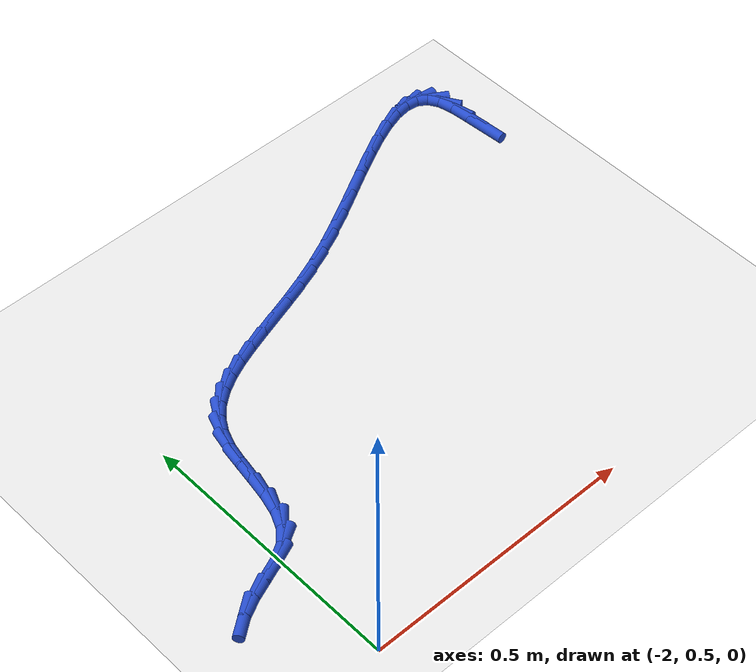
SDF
<sdf version="1.6">
 <world name="default">
  <model name="ground_plane">
   <static>1</static>
   <link name="link">
    <collision name="collision">
     <geometry><plane><normal>0 0 1</normal><size>100 100</size></plane></geometry>
     <surface><friction><ode><mu>100</mu><mu2>50</mu2></ode></friction></surface>
    </collision>
    <visual name="visual">
     <cast_shadows>0</cast_shadows>
     <geometry><plane><normal>0 0 1</normal><size>100 100</size></plane></geometry>
     <material>
      <script><uri>file://media/materials/scripts/gazebo.material</uri><name>Gazebo/WhiteGlow</name></script>
     </material>
    </visual>
   </link>
  </model>
  <model name="line">
   <link name="link_55">
    <pose>-1.1116758356326157 1.1791620359796127 0.01 0 1.57 -1.4992678715452665</pose>
    <collision name="collision">
     <geometry><cylinder><radius>0.01</radius><length>0.08</length></cylinder></geometry>
    </collision>
    <visual name="visual">
     <material>
      <script><name>Gazebo/Blue</name><uri>file://media/materials/scripts/gazebo.material</uri></script>
     </material>
     <geometry><cylinder><radius>0.01</radius><length>0.08</length></cylinder></geometry>
    </visual>
   </link>
   <link name="link_56">
    <pose>-1.114421414229995 1.2174809759097003 0.01 0 1.57 -1.4856100562711685</pose>
    <collision name="collision">
     <geometry><cylinder><radius>0.01</radius><length>0.08</length></cylinder></geometry>
    </collision>
    <visual name="visual">
     <material>
      <script><name>Gazebo/Blue</name><uri>file://media/materials/scripts/gazebo.material</uri></script>
     </material>
     <geometry><cylinder><radius>0.01</radius><length>0.08</length></cylinder></geometry>
    </visual>
   </link>
   <link name="link_57">
    <pose>-1.1175008044849892 1.2535423962802963 0.01 0 1.57 -1.3523575630717317</pose>
    <collision name="collision">
     <geometry><cylinder><radius>0.01</radius><length>0.08</length></cylinder></geometry>
    </collision>
    <visual name="visual">
     <material>
      <script><name>Gazebo/Blue</name><uri>file://media/materials/scripts/gazebo.material</uri></script>
     </material>
     <geometry><cylinder><radius>0.01</radius><length>0.08</length></cylinder></geometry>
    </visual>
   </link>
   <link name="link_58">
    <pose>-1.1240523881400692 1.2830566021816074 0.01 0 1.57 -1.0199769849017297</pose>
    <collision name="collision">
     <geometry><cylinder><radius>0.01</radius><length>0.08</length></cylinder></geometry>
    </collision>
    <visual name="visual">
     <material>
      <script><name>Gazebo/Blue</name><uri>file://media/materials/scripts/gazebo.material</uri></script>
     </material>
     <geometry><cylinder><radius>0.01</radius><length>0.08</length></cylinder></geometry>
    </visual>
   </link>
   <link name="link_59">
    <pose>-1.1363208790384876 1.3030302745196618 0.01 0 1.57 -0.5489929953946124</pose>
    <collision name="collision">
     <geometry><cylinder><radius>0.01</radius><length>0.08</length></cylinder></geometry>
    </collision>
    <visual name="visual">
     <material>
      <script><name>Gazebo/Blue</name><uri>file://media/materials/scripts/gazebo.material</uri></script>
     </material>
     <geometry><cylinder><radius>0.01</radius><length>0.08</length></cylinder></geometry>
    </visual>
   </link>
   <link name="link_60">
    <pose>-1.1541579107799853 1.3139415530675986 0.01 0 1.57 -0.1262654930091497</pose>
    <collision name="collision">
     <geometry><cylinder><radius>0.01</radius><length>0.08</length></cylinder></geometry>
    </collision>
    <visual name="visual">
     <material>
      <script><name>Gazebo/Blue</name><uri>file://media/materials/scripts/gazebo.material</uri></script>
     </material>
     <geometry><cylinder><radius>0.01</radius><length>0.08</length></cylinder></geometry>
    </visual>
   </link>
   <link name="link_61">
    <pose>-1.1770187691772234 1.3168435290836418 0.01 0 1.57 0.14721683500835966</pose>
    <collision name="collision">
     <geometry><cylinder><radius>0.01</radius><length>0.08</length></cylinder></geometry>
    </collision>
    <visual name="visual">
     <material>
      <script><name>Gazebo/Blue</name><uri>file://media/materials/scripts/gazebo.material</uri></script>
     </material>
     <geometry><cylinder><radius>0.01</radius><length>0.08</length></cylinder></geometry>
    </visual>
   </link>
   <link name="link_62">
    <pose>-1.204358740042859 1.3127892938260133 0.01 0 1.57 0.30823916741620105</pose>
    <collision name="collision">
     <geometry><cylinder><radius>0.01</radius><length>0.08</length></cylinder></geometry>
    </collision>
    <visual name="visual">
     <material>
      <script><name>Gazebo/Blue</name><uri>file://media/materials/scripts/gazebo.material</uri></script>
     </material>
     <geometry><cylinder><radius>0.01</radius><length>0.08</length></cylinder></geometry>
    </visual>
   </link>
   <link name="link_63">
    <pose>-1.235633109189553 1.302831938552937 0.01 0 1.57 0.4037057664045933</pose>
    <collision name="collision">
     <geometry><cylinder><radius>0.01</radius><length>0.08</length></cylinder></geometry>
    </collision>
    <visual name="visual">
     <material>
      <script><name>Gazebo/Blue</name><uri>file://media/materials/scripts/gazebo.material</uri></script>
     </material>
     <geometry><cylinder><radius>0.01</radius><length>0.08</length></cylinder></geometry>
    </visual>
   </link>
   <link name="link_64">
    <pose>-1.270297162429964 1.2880245545226359 0.01 0 1.57 0.4604391977581708</pose>
    <collision name="collision">
     <geometry><cylinder><radius>0.01</radius><length>0.08</length></cylinder></geometry>
    </collision>
    <visual name="visual">
     <material>
      <script><name>Gazebo/Blue</name><uri>file://media/materials/scripts/gazebo.material</uri></script>
     </material>
     <geometry><cylinder><radius>0.01</radius><length>0.08</length></cylinder></geometry>
    </visual>
   </link>
   <link name="link_65">
    <pose>-1.3078061855767507 1.2694202329933326 0.01 0 1.57 0.49223395962969607</pose>
    <collision name="collision">
     <geometry><cylinder><radius>0.01</radius><length>0.08</length></cylinder></geometry>
    </collision>
    <visual name="visual">
     <material>
      <script><name>Gazebo/Blue</name><uri>file://media/materials/scripts/gazebo.material</uri></script>
     </material>
     <geometry><cylinder><radius>0.01</radius><length>0.08</length></cylinder></geometry>
    </visual>
   </link>
   <link name="link_66">
    <pose>-1.3476154644425735 1.2480720652232493 0.01 0 1.57 0.5061301447515708</pose>
    <collision name="collision">
     <geometry><cylinder><radius>0.01</radius><length>0.08</length></cylinder></geometry>
    </collision>
    <visual name="visual">
     <material>
      <script><name>Gazebo/Blue</name><uri>file://media/materials/scripts/gazebo.material</uri></script>
     </material>
     <geometry><cylinder><radius>0.01</radius><length>0.08</length></cylinder></geometry>
    </visual>
   </link>
   <link name="link_67">
    <pose>-1.3891802848400907 1.2250331424706105 0.01 0 1.57 0.5055311294043117</pose>
    <collision name="collision">
     <geometry><cylinder><radius>0.01</radius><length>0.08</length></cylinder></geometry>
    </collision>
    <visual name="visual">
     <material>
      <script><name>Gazebo/Blue</name><uri>file://media/materials/scripts/gazebo.material</uri></script>
     </material>
     <geometry><cylinder><radius>0.01</radius><length>0.08</length></cylinder></geometry>
    </visual>
   </link>
   <link name="link_68">
    <pose>-1.4319559325819622 1.2013565559936379 0.01 0 1.57 0.4916085973503633</pose>
    <collision name="collision">
     <geometry><cylinder><radius>0.01</radius><length>0.08</length></cylinder></geometry>
    </collision>
    <visual name="visual">
     <material>
      <script><name>Gazebo/Blue</name><uri>file://media/materials/scripts/gazebo.material</uri></script>
     </material>
     <geometry><cylinder><radius>0.01</radius><length>0.08</length></cylinder></geometry>
    </visual>
   </link>
   <link name="link_69">
    <pose>-1.4753976934808466 1.1780953970505554 0.01 0 1.57 0.46385069974920246</pose>
    <collision name="collision">
     <geometry><cylinder><radius>0.01</radius><length>0.08</length></cylinder></geometry>
    </collision>
    <visual name="visual">
     <material>
      <script><name>Gazebo/Blue</name><uri>file://media/materials/scripts/gazebo.material</uri></script>
     </material>
     <geometry><cylinder><radius>0.01</radius><length>0.08</length></cylinder></geometry>
    </visual>
   </link>
   <link name="link_70">
    <pose>-1.5189608533494043 1.1563027568995854 0.01 0 1.57 0.42035001760110835</pose>
    <collision name="collision">
     <geometry><cylinder><radius>0.01</radius><length>0.08</length></cylinder></geometry>
    </collision>
    <visual name="visual">
     <material>
      <script><name>Gazebo/Blue</name><uri>file://media/materials/scripts/gazebo.material</uri></script>
     </material>
     <geometry><cylinder><radius>0.01</radius><length>0.08</length></cylinder></geometry>
    </visual>
   </link>
   <link name="link_71">
    <pose>-1.5621023098400695 1.1370188523208697 0.01 0 1.57 0.37036346282402927</pose>
    <collision name="collision">
     <geometry><cylinder><radius>0.01</radius><length>0.08</length></cylinder></geometry>
    </collision>
    <visual name="visual">
     <material>
      <script><name>Gazebo/Blue</name><uri>file://media/materials/scripts/gazebo.material</uri></script>
     </material>
     <geometry><cylinder><radius>0.01</radius><length>0.08</length></cylinder></geometry>
    </visual>
   </link>
   <link name="link_72">
    <pose>-1.604363371915626 1.1206096695780599 0.01 0 1.57 0.3322072768593022</pose>
    <collision name="collision">
     <geometry><cylinder><radius>0.01</radius><length>0.08</length></cylinder></geometry>
    </collision>
    <visual name="visual">
     <material>
      <script><name>Gazebo/Blue</name><uri>file://media/materials/scripts/gazebo.material</uri></script>
     </material>
     <geometry><cylinder><radius>0.01</radius><length>0.08</length></cylinder></geometry>
    </visual>
   </link>
   <link name="link_73">
    <pose>-1.645409565250947 1.106449021047163 0.01 0 1.57 0.30914213943755897</pose>
    <collision name="collision">
     <geometry><cylinder><radius>0.01</radius><length>0.08</length></cylinder></geometry>
    </collision>
    <visual name="visual">
     <material>
      <script><name>Gazebo/Blue</name><uri>file://media/materials/scripts/gazebo.material</uri></script>
     </material>
     <geometry><cylinder><radius>0.01</radius><length>0.08</length></cylinder></geometry>
    </visual>
   </link>
   <link name="link_74">
    <pose>-1.6849163627974877 1.0938312658010696 0.01 0 1.57 0.30329877855128634</pose>
    <collision name="collision">
     <geometry><cylinder><radius>0.01</radius><length>0.08</length></cylinder></geometry>
    </collision>
    <visual name="visual">
     <material>
      <script><name>Gazebo/Blue</name><uri>file://media/materials/scripts/gazebo.material</uri></script>
     </material>
     <geometry><cylinder><radius>0.01</radius><length>0.08</length></cylinder></geometry>
    </visual>
   </link>
   <link name="link_75">
    <pose>-1.7225592375067025 1.0820507629126717 0.01 0 1.57 0.3174480546260511</pose>
    <collision name="collision">
     <geometry><cylinder><radius>0.01</radius><length>0.08</length></cylinder></geometry>
    </collision>
    <visual name="visual">
     <material>
      <script><name>Gazebo/Blue</name><uri>file://media/materials/scripts/gazebo.material</uri></script>
     </material>
     <geometry><cylinder><radius>0.01</radius><length>0.08</length></cylinder></geometry>
    </visual>
   </link>
   <link name="link_76">
    <pose>-1.7580136623300464 1.0704018714548604 0.01 0 1.57 0.35530307979716197</pose>
    <collision name="collision">
     <geometry><cylinder><radius>0.01</radius><length>0.08</length></cylinder></geometry>
    </collision>
    <visual name="visual">
     <material>
      <script><name>Gazebo/Blue</name><uri>file://media/materials/scripts/gazebo.material</uri></script>
     </material>
     <geometry><cylinder><radius>0.01</radius><length>0.08</length></cylinder></geometry>
    </visual>
   </link>
   <link name="link_77">
    <pose>-1.7909551102189742 1.0581789505005268 0.01 0 1.57 0.4216327204007281</pose>
    <collision name="collision">
     <geometry><cylinder><radius>0.01</radius><length>0.08</length></cylinder></geometry>
    </collision>
    <visual name="visual">
     <material>
      <script><name>Gazebo/Blue</name><uri>file://media/materials/scripts/gazebo.material</uri></script>
     </material>
     <geometry><cylinder><radius>0.01</radius><length>0.08</length></cylinder></geometry>
    </visual>
   </link>
   <link name="link_78">
    <pose>-1.8210590541249405 1.044676359122562 0.01 0 1.57 0.5217311435137242</pose>
    <collision name="collision">
     <geometry><cylinder><radius>0.01</radius><length>0.08</length></cylinder></geometry>
    </collision>
    <visual name="visual">
     <material>
      <script><name>Gazebo/Blue</name><uri>file://media/materials/scripts/gazebo.material</uri></script>
     </material>
     <geometry><cylinder><radius>0.01</radius><length>0.08</length></cylinder></geometry>
    </visual>
   </link>
   <link name="link_79">
    <pose>-1.8480009669994015 1.0291884563938583 0.01 0 1.57 0.6593355062647329</pose>
    <collision name="collision">
     <geometry><cylinder><radius>0.01</radius><length>0.08</length></cylinder></geometry>
    </collision>
    <visual name="visual">
     <material>
      <script><name>Gazebo/Blue</name><uri>file://media/materials/scripts/gazebo.material</uri></script>
     </material>
     <geometry><cylinder><radius>0.01</radius><length>0.08</length></cylinder></geometry>
    </visual>
   </link>
   <link name="link_80">
    <pose>-1.87145632179381 1.0110096013873058 0.01 0 1.57 0.8322147726103699</pose>
    <collision name="collision">
     <geometry><cylinder><radius>0.01</radius><length>0.08</length></cylinder></geometry>
    </collision>
    <visual name="visual">
     <material>
      <script><name>Gazebo/Blue</name><uri>file://media/materials/scripts/gazebo.material</uri></script>
     </material>
     <geometry><cylinder><radius>0.01</radius><length>0.08</length></cylinder></geometry>
    </visual>
   </link>
   <link name="link_81">
    <pose>-1.8911005914596228 0.9894341531757966 0.01 0 1.57 1.027459748162013</pose>
    <collision name="collision">
     <geometry><cylinder><radius>0.01</radius><length>0.08</length></cylinder></geometry>
    </collision>
    <visual name="visual">
     <material>
      <script><name>Gazebo/Blue</name><uri>file://media/materials/scripts/gazebo.material</uri></script>
     </material>
     <geometry><cylinder><radius>0.01</radius><length>0.08</length></cylinder></geometry>
    </visual>
   </link>
   <link name="link_82">
    <pose>-1.9066092489482935 0.9637564708322219 0.01 0 1.57 1.222054079865475</pose>
    <collision name="collision">
     <geometry><cylinder><radius>0.01</radius><length>0.08</length></cylinder></geometry>
    </collision>
    <visual name="visual">
     <material>
      <script><name>Gazebo/Blue</name><uri>file://media/materials/scripts/gazebo.material</uri></script>
     </material>
     <geometry><cylinder><radius>0.01</radius><length>0.08</length></cylinder></geometry>
    </visual>
   </link>
   <link name="link_83">
    <pose>-1.9176832127732784 0.9333003433684417 0.01 0 1.57 1.361651715265321</pose>
    <collision name="collision">
     <geometry><cylinder><radius>0.01</radius><length>0.08</length></cylinder></geometry>
    </collision>
    <visual name="visual">
     <material>
      <script><name>Gazebo/Blue</name><uri>file://media/materials/scripts/gazebo.material</uri></script>
     </material>
     <geometry><cylinder><radius>0.01</radius><length>0.08</length></cylinder></geometry>
    </visual>
   </link>
   <link name="link_84">
    <pose>-1.9250525733125599 0.8985798838756651 0.01 0 1.57 1.4160588179692182</pose>
    <collision name="collision">
     <geometry><cylinder><radius>0.01</radius><length>0.08</length></cylinder></geometry>
    </collision>
    <visual name="visual">
     <material>
      <script><name>Gazebo/Blue</name><uri>file://media/materials/scripts/gazebo.material</uri></script>
     </material>
     <geometry><cylinder><radius>0.01</radius><length>0.08</length></cylinder></geometry>
    </visual>
   </link>
   <link name="link_85">
    <pose>-1.930807949116498 0.8616827710467513 0.01 0 1.57 1.400928922982288</pose>
    <collision name="collision">
     <geometry><cylinder><radius>0.01</radius><length>0.08</length></cylinder></geometry>
    </collision>
    <visual name="visual">
     <material>
      <script><name>Gazebo/Blue</name><uri>file://media/materials/scripts/gazebo.material</uri></script>
     </material>
     <geometry><cylinder><radius>0.01</radius><length>0.08</length></cylinder></geometry>
    </visual>
   </link>
   <link name="link_86">
    <pose>-1.9371332982659184 0.8248046386154059 0.01 0 1.57 1.3146249647450792</pose>
    <collision name="collision">
     <geometry><cylinder><radius>0.01</radius><length>0.08</length></cylinder></geometry>
    </collision>
    <visual name="visual">
     <material>
      <script><name>Gazebo/Blue</name><uri>file://media/materials/scripts/gazebo.material</uri></script>
     </material>
     <geometry><cylinder><radius>0.01</radius><length>0.08</length></cylinder></geometry>
    </visual>
   </link>
   <link name="link_87">
    <pose>-1.9462125788416487 0.7901411203153337 0.01 0 1.57 1.1369147461633051</pose>
    <collision name="collision">
     <geometry><cylinder><radius>0.01</radius><length>0.08</length></cylinder></geometry>
    </collision>
    <visual name="visual">
     <material>
      <script><name>Gazebo/Blue</name><uri>file://media/materials/scripts/gazebo.material</uri></script>
     </material>
     <geometry><cylinder><radius>0.01</radius><length>0.08</length></cylinder></geometry>
    </visual>
   </link>
   <link name="link_88">
    <pose>-1.9602297489245175 0.7598878498802394 0.01 0 1.57 0.8427877424800142</pose>
    <collision name="collision">
     <geometry><cylinder><radius>0.01</radius><length>0.08</length></cylinder></geometry>
    </collision>
    <visual name="visual">
     <material>
      <script><name>Gazebo/Blue</name><uri>file://media/materials/scripts/gazebo.material</uri></script>
     </material>
     <geometry><cylinder><radius>0.01</radius><length>0.08</length></cylinder></geometry>
    </visual>
   </link>
   <link name="link_89">
    <pose>-1.9813372826596016 0.7362071103694704 0.01 0 1.57 0.5396967616372165</pose>
    <collision name="collision">
     <geometry><cylinder><radius>0.01</radius><length>0.08</length></cylinder></geometry>
    </collision>
    <visual name="visual">
     <material>
      <script><name>Gazebo/Blue</name><uri>file://media/materials/scripts/gazebo.material</uri></script>
     </material>
     <geometry><cylinder><radius>0.01</radius><length>0.08</length></cylinder></geometry>
    </visual>
   </link>
   <link name="link_90">
    <pose>-2.009737186792275 0.7191950707575814 0.01 0 1.57 0.38975424255862756</pose>
    <collision name="collision">
     <geometry><cylinder><radius>0.01</radius><length>0.08</length></cylinder></geometry>
    </collision>
    <visual name="visual">
     <material>
      <script><name>Gazebo/Blue</name><uri>file://media/materials/scripts/gazebo.material</uri></script>
     </material>
     <geometry><cylinder><radius>0.01</radius><length>0.08</length></cylinder></geometry>
    </visual>
   </link>
   <link name="link_91">
    <pose>-2.0425723813866132 0.7057074346415593 0.01 0 1.57 0.3737311324519945</pose>
    <collision name="collision">
     <geometry><cylinder><radius>0.01</radius><length>0.08</length></cylinder></geometry>
    </collision>
    <visual name="visual">
     <material>
      <script><name>Gazebo/Blue</name><uri>file://media/materials/scripts/gazebo.material</uri></script>
     </material>
     <geometry><cylinder><radius>0.01</radius><length>0.08</length></cylinder></geometry>
    </visual>
   </link>
   <link name="link_92">
    <pose>-2.0767184026986514 0.6923166681482712 0.01 0 1.57 0.4749861787355109</pose>
    <collision name="collision">
     <geometry><cylinder><radius>0.01</radius><length>0.08</length></cylinder></geometry>
    </collision>
    <visual name="visual">
     <material>
      <script><name>Gazebo/Blue</name><uri>file://media/materials/scripts/gazebo.material</uri></script>
     </material>
     <geometry><cylinder><radius>0.01</radius><length>0.08</length></cylinder></geometry>
    </visual>
   </link>
   <link name="link_93">
    <pose>-2.1091012399846583 0.6756636439262813 0.01 0 1.57 0.636622004483035</pose>
    <collision name="collision">
     <geometry><cylinder><radius>0.01</radius><length>0.08</length></cylinder></geometry>
    </collision>
    <visual name="visual">
     <material>
      <script><name>Gazebo/Blue</name><uri>file://media/materials/scripts/gazebo.material</uri></script>
     </material>
     <geometry><cylinder><radius>0.01</radius><length>0.08</length></cylinder></geometry>
    </visual>
   </link>
  </model>
 </world>
</sdf>
